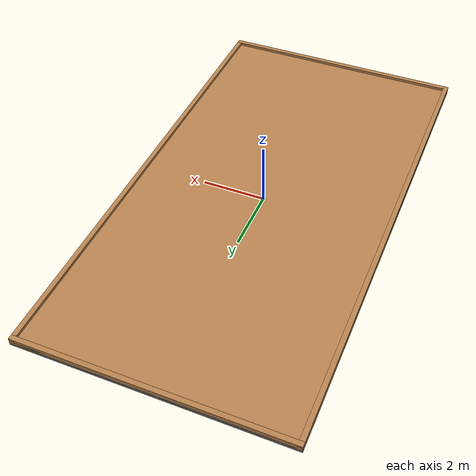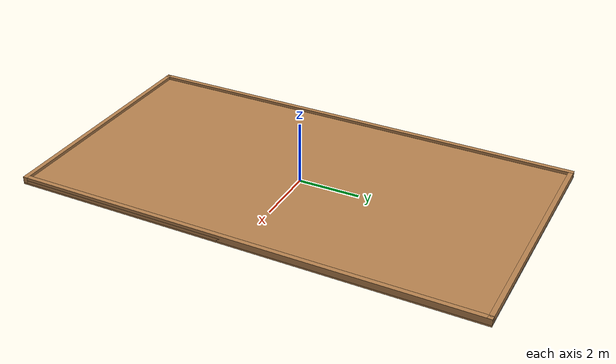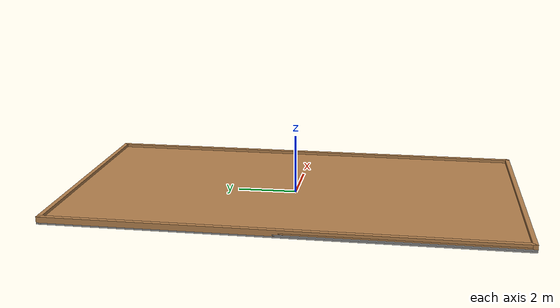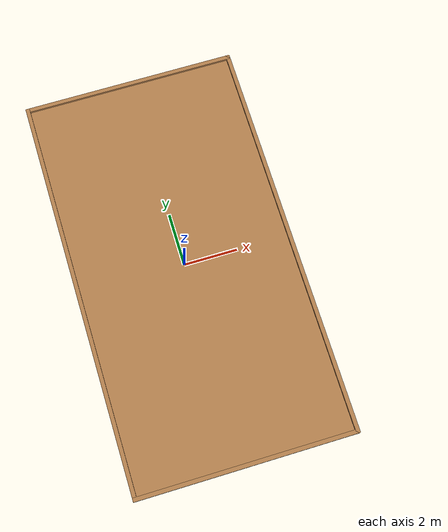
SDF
<?xml version='1.0'?>
<sdf version='1.7'>
  <model name='court_model'>
    <pose>0 0 0 0 -0 0</pose>
    <link name='Floor_0'>
      <collision name='Floor_0_Collision'>
        <geometry>
          <box>
            <size>8.15 15.15 0.1</size>
          </box>
        </geometry>
        <pose>0 0 0.05 0 -0 0</pose>
      </collision>
      <visual name='Floor_0_Visual'>
        <pose>0 0 0.05 0 -0 0</pose>
        <geometry>
          <box>
            <size>8.15 15.15 0.1</size>
          </box>
        </geometry>
        <material>
          <script>
            <uri>file://media/materials/scripts/gazebo.material</uri>
            <name>Gazebo/Wood</name>
          </script>
          <ambient>1 1 1 1</ambient>
        </material>
        <meta>
          <layer>1</layer>
        </meta>
      </visual>
      <pose>0 0 0.05 0 -0 0</pose>
    </link>
    <link name='Wall_0'>
      <collision name='Wall_0_Collision'>
        <geometry>
          <box>
            <size>15.15 0.15 0.05</size>
          </box>
        </geometry>
        <pose>0 0 0.025 0 -0 0</pose>
      </collision>
      <visual name='Wall_0_Visual'>
        <pose>0 0 0.025 0 -0 0</pose>
        <geometry>
          <box>
            <size>15.15 0.15 0.05</size>
          </box>
        </geometry>
        <material>
          <script>
            <uri>file://media/materials/scripts/gazebo.material</uri>
            <name>Gazebo/Grey</name>
          </script>
          <ambient>1 1 1 1</ambient>
        </material>
        <meta>
          <layer>0</layer>
        </meta>
      </visual>
      <pose>-4 0 0 0 -0 -1.5708</pose>
    </link>
    <link name='Wall_1'>
      <collision name='Wall_1_Collision'>
        <geometry>
          <box>
            <size>8.15 0.15 0.05</size>
          </box>
        </geometry>
        <pose>0 0 0.025 0 -0 0</pose>
      </collision>
      <visual name='Wall_1_Visual'>
        <pose>0 0 0.025 0 -0 0</pose>
        <geometry>
          <box>
            <size>8.15 0.15 0.05</size>
          </box>
        </geometry>
        <material>
          <script>
            <uri>file://media/materials/scripts/gazebo.material</uri>
            <name>Gazebo/Wood</name>
          </script>
          <ambient>1 1 1 1</ambient>
        </material>
        <meta>
          <layer>0</layer>
        </meta>
      </visual>
      <pose>0 -7.5 0 0 -0 0</pose>
    </link>
    <link name='Wall_10'>
      <collision name='Wall_10_Collision'>
        <geometry>
          <box>
            <size>15.15 0.15 0.2</size>
          </box>
        </geometry>
        <pose>0 0 0.1 0 -0 0</pose>
      </collision>
      <visual name='Wall_10_Visual'>
        <pose>0 0 0.1 0 -0 0</pose>
        <geometry>
          <box>
            <size>15.15 0.15 0.2</size>
          </box>
        </geometry>
        <material>
          <script>
            <uri>file://media/materials/scripts/gazebo.material</uri>
            <name>Gazebo/Wood</name>
          </script>
          <ambient>1 1 1 1</ambient>
        </material>
        <meta>
          <layer>1</layer>
        </meta>
      </visual>
      <pose>4 0 0.05 0 -0 -1.5708</pose>
    </link>
    <link name='Wall_11'>
      <collision name='Wall_11_Collision'>
        <geometry>
          <box>
            <size>8.15 0.15 0.05</size>
          </box>
        </geometry>
        <pose>0 0 0.025 0 -0 0</pose>
      </collision>
      <visual name='Wall_11_Visual'>
        <pose>0 0 0.025 0 -0 0</pose>
        <geometry>
          <box>
            <size>8.15 0.15 0.05</size>
          </box>
        </geometry>
        <material>
          <script>
            <uri>file://media/materials/scripts/gazebo.material</uri>
            <name>Gazebo/Grey</name>
          </script>
          <ambient>1 1 1 1</ambient>
        </material>
        <meta>
          <layer>1</layer>
        </meta>
      </visual>
      <pose>0 7.5 0.05 0 -0 0</pose>
    </link>
    <link name='Wall_12'>
      <collision name='Wall_12_Collision'>
        <geometry>
          <box>
            <size>8.15 0.15 0.2</size>
          </box>
        </geometry>
        <pose>0 0 0.1 0 -0 0</pose>
      </collision>
      <visual name='Wall_12_Visual'>
        <pose>0 0 0.1 0 -0 0</pose>
        <geometry>
          <box>
            <size>8.15 0.15 0.2</size>
          </box>
        </geometry>
        <material>
          <script>
            <uri>file://media/materials/scripts/gazebo.material</uri>
            <name>Gazebo/Wood</name>
          </script>
          <ambient>1 1 1 1</ambient>
        </material>
        <meta>
          <layer>1</layer>
        </meta>
      </visual>
      <pose>0 -7.5 0.05 0 -0 3.14159</pose>
    </link>
    <link name='Wall_13'>
      <collision name='Wall_13_Collision'>
        <geometry>
          <box>
            <size>15.15 0.15 0.2</size>
          </box>
        </geometry>
        <pose>0 0 0.1 0 -0 0</pose>
      </collision>
      <visual name='Wall_13_Visual'>
        <pose>0 0 0.1 0 -0 0</pose>
        <geometry>
          <box>
            <size>15.15 0.15 0.2</size>
          </box>
        </geometry>
        <material>
          <script>
            <uri>file://media/materials/scripts/gazebo.material</uri>
            <name>Gazebo/Wood</name>
          </script>
          <ambient>1 1 1 1</ambient>
        </material>
        <meta>
          <layer>1</layer>
        </meta>
      </visual>
      <pose>-4 0 0.05 0 -0 1.5708</pose>
    </link>
    <link name='Wall_14'>
      <collision name='Wall_14_Collision'>
        <geometry>
          <box>
            <size>8.15 0.15 0.2</size>
          </box>
        </geometry>
        <pose>0 0 0.1 0 -0 0</pose>
      </collision>
      <visual name='Wall_14_Visual'>
        <pose>0 0 0.1 0 -0 0</pose>
        <geometry>
          <box>
            <size>8.15 0.15 0.2</size>
          </box>
        </geometry>
        <material>
          <script>
            <uri>file://media/materials/scripts/gazebo.material</uri>
            <name>Gazebo/Wood</name>
          </script>
          <ambient>1 1 1 1</ambient>
        </material>
        <meta>
          <layer>1</layer>
        </meta>
      </visual>
      <pose>0 7.5 0.05 0 -0 0</pose>
    </link>
    <link name='Wall_3'>
      <collision name='Wall_3_Collision'>
        <geometry>
          <box>
            <size>15.1508 0.15 0.05</size>
          </box>
        </geometry>
        <pose>0 0 0.025 0 -0 0</pose>
      </collision>
      <visual name='Wall_3_Visual'>
        <pose>0 0 0.025 0 -0 0</pose>
        <geometry>
          <box>
            <size>15.1508 0.15 0.05</size>
          </box>
        </geometry>
        <material>
          <script>
            <uri>file://media/materials/scripts/gazebo.material</uri>
            <name>Gazebo/Wood</name>
          </script>
          <ambient>1 1 1 1</ambient>
        </material>
        <meta>
          <layer>0</layer>
        </meta>
      </visual>
      <pose>4 0 0 0 -0 -1.5708</pose>
    </link>
    <link name='Wall_6'>
      <collision name='Wall_6_Collision'>
        <geometry>
          <box>
            <size>8.15 0.15 0.05</size>
          </box>
        </geometry>
        <pose>0 0 0.025 0 -0 0</pose>
      </collision>
      <visual name='Wall_6_Visual'>
        <pose>0 0 0.025 0 -0 0</pose>
        <geometry>
          <box>
            <size>8.15 0.15 0.05</size>
          </box>
        </geometry>
        <material>
          <script>
            <uri>file://media/materials/scripts/gazebo.material</uri>
            <name>Gazebo/Grey</name>
          </script>
          <ambient>1 1 1 1</ambient>
        </material>
        <meta>
          <layer>0</layer>
        </meta>
      </visual>
      <pose>0 7.5 0 0 -0 0</pose>
    </link>
    <link name='Wall_8'>
      <collision name='Wall_8_Collision'>
        <geometry>
          <box>
            <size>15.15 0.15 0.05</size>
          </box>
        </geometry>
        <pose>0 0 0.025 0 -0 0</pose>
      </collision>
      <visual name='Wall_8_Visual'>
        <pose>0 0 0.025 0 -0 0</pose>
        <geometry>
          <box>
            <size>15.15 0.15 0.05</size>
          </box>
        </geometry>
        <material>
          <script>
            <uri>file://media/materials/scripts/gazebo.material</uri>
            <name>Gazebo/Grey</name>
          </script>
          <ambient>1 1 1 1</ambient>
        </material>
        <meta>
          <layer>1</layer>
        </meta>
      </visual>
      <pose>-4 0 0.05 0 -0 -1.5708</pose>
    </link>
    <link name='Wall_9'>
      <collision name='Wall_9_Collision'>
        <geometry>
          <box>
            <size>8.15 0.15 0.05</size>
          </box>
        </geometry>
        <pose>0 0 0.025 0 -0 0</pose>
      </collision>
      <visual name='Wall_9_Visual'>
        <pose>0 0 0.025 0 -0 0</pose>
        <geometry>
          <box>
            <size>8.15 0.15 0.05</size>
          </box>
        </geometry>
        <material>
          <script>
            <uri>file://media/materials/scripts/gazebo.material</uri>
            <name>Gazebo/Wood</name>
          </script>
          <ambient>1 1 1 1</ambient>
        </material>
        <meta>
          <layer>1</layer>
        </meta>
      </visual>
      <pose>0 -7.5 0.05 0 -0 0</pose>
    </link>
    <static>1</static>
  </model>
</sdf>
